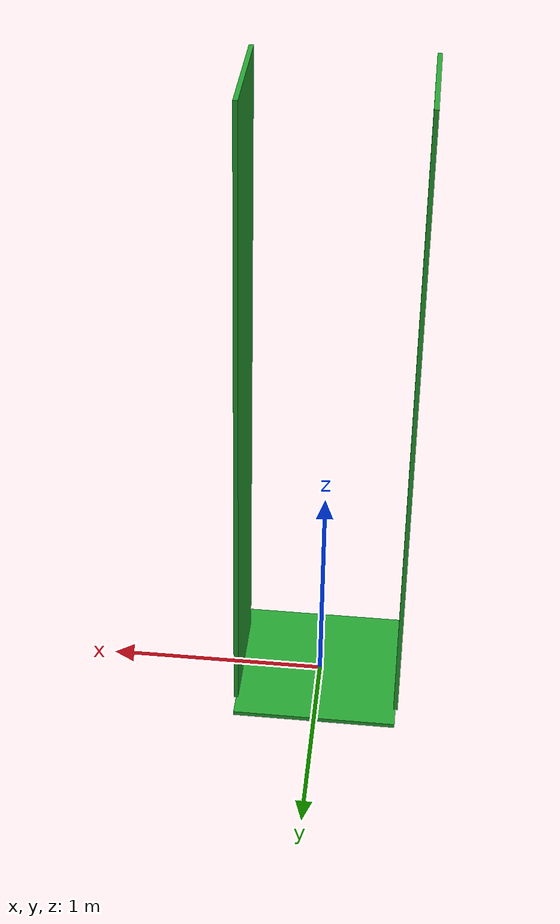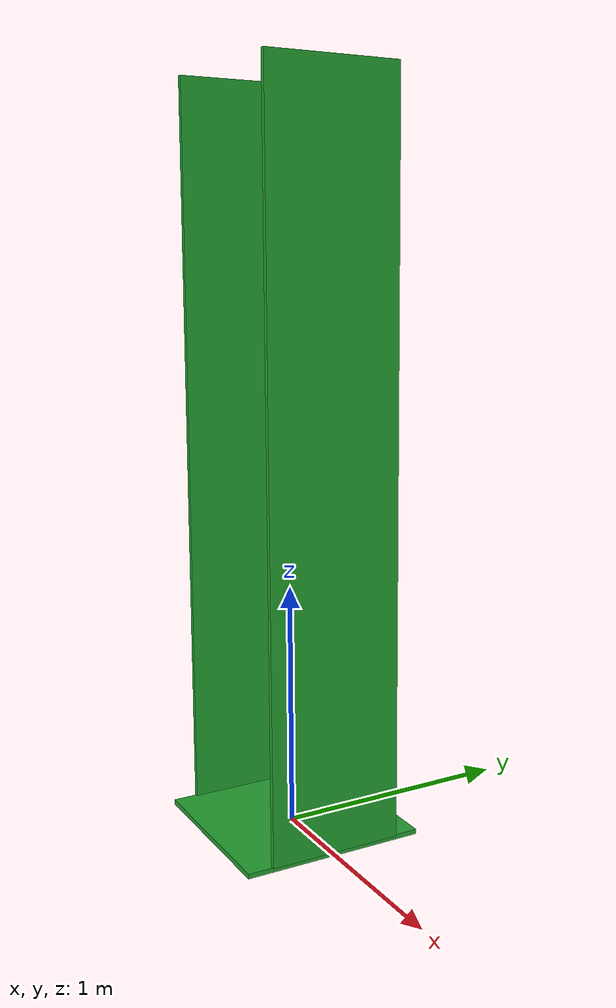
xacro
<?xml version="1.0"?>
<robot xmlns:xacro="https://www.ros.org/wiki/xacro">

    <link name="gripper_base_link">
        <visual>
            <geometry>
                <box size="0.75 0.75 0.02"/>
            </geometry>
            <origin xyz="0 0 0.01" rpy="0 0 0"/>
            <material name="dark_green"/>
        </visual>
        <collision>
            <geometry>
                <box size="0.75 0.75 0.02"/>
            </geometry>
            <origin xyz="0 0 0.01" rpy="0 0 0"/>
        </collision>
    </link>

    <link name="gripper_left_finger_link">
        <visual>
            <geometry>
                <box size="0.02 0.55 3.0"/>
            </geometry>
            <origin xyz="0 0 1.5" rpy="0 0 0"/>
            <material name="light_green"/>
        </visual>
        <collision>
            <geometry>
                <box size="0.02 0.55 3.0"/>
            </geometry>
            <origin xyz="0 0 1.5" rpy="0 0 0"/>
        </collision>
    </link>

    <link name="gripper_right_finger_link">
        <visual>
            <geometry>
                <box size="0.02 0.55 3.0"/>
            </geometry>
            <origin xyz="0 0 1.5" rpy="0 0 0"/>
            <material name="light_green"/>
        </visual>
        <collision>
            <geometry>
                <box size="0.02 0.55 3.0"/>
            </geometry>
            <origin xyz="0 0 1.5" rpy="0 0 0"/>
        </collision>
    </link>

    <joint name="gripper_left_finger_joint" type="prismatic">
        <parent link="gripper_base_link"/>
        <child link="gripper_left_finger_link"/>
        <origin xyz="-0.375 0 0.02" rpy="0 0 0"/>
        <axis xyz="1 0 0"/>
        <limit lower="0.0" upper="0.375" effort="1000.0" velocity="1.0"/>
    </joint>

    <joint name="gripper_right_finger_joint" type="prismatic">
        <parent link="gripper_base_link"/>
        <child link="gripper_right_finger_link"/>
        <origin xyz="0.375 0 0.02" rpy="0 0 0"/>
        <axis xyz="1 0 0"/>
        <mimic joint="gripper_left_finger_joint" multiplier="-1.0"/>
        <limit lower="-0.375" upper="0.0" effort="1000.0" velocity="1.0"/>
    </joint>

</robot>
